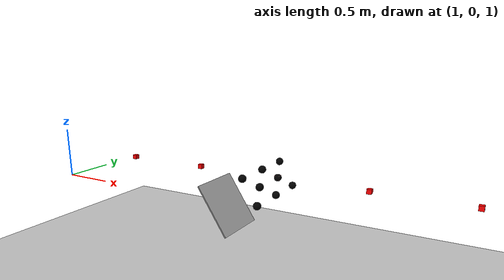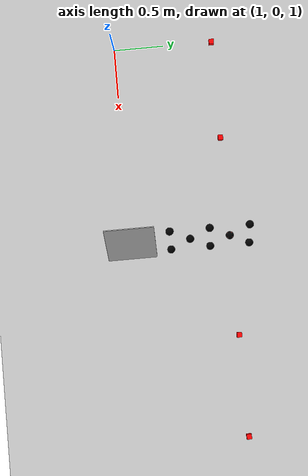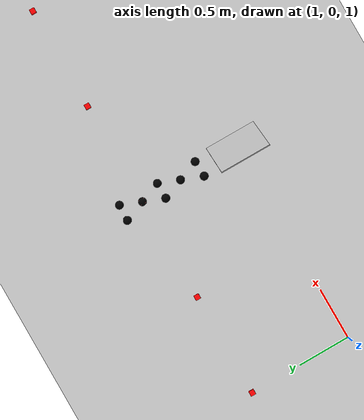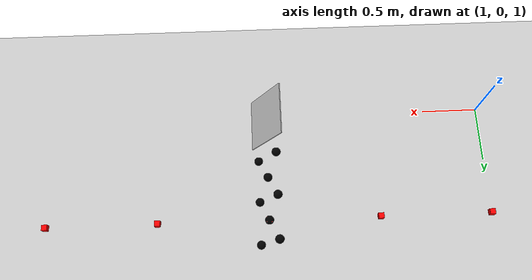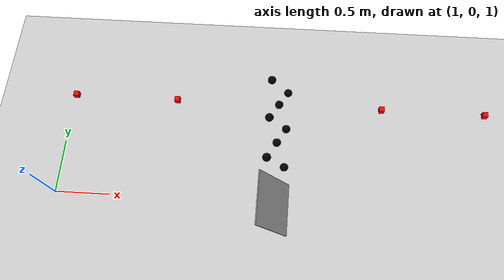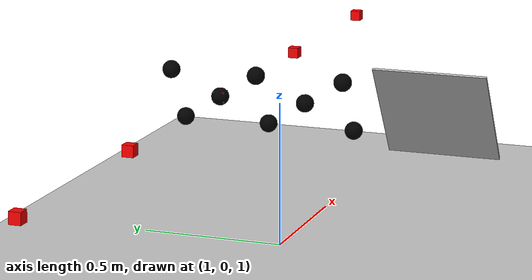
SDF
<?xml version="1.0" ?>
<sdf version="1.4">
  <world name="underwater_world">
    <physics name="default_physics" type="ode" default="true">
      <real_time_update_rate>100</real_time_update_rate>
      <max_step_size>0.001</max_step_size>
    </physics>
    <!-- 全局光源 -->
    <include>
      <uri>model://sun</uri>
    </include>

    <!-- 水下环境 -->
    <scene>
      <ambient>0.0 0.0 0.4 1</ambient>
      <background>0.0 0.0 0.4 1</background>
      <shadows>false</shadows>
    </scene>

    <!-- 棋盘模型 -->
    <include>
      <uri>model://chess_board</uri>
      <name>chess_board</name>
      <pose>3 0 1 0 1 0</pose>

    </include>

    <!-- 地面 -->
    <model name="ground_plane">
      <static>true</static>
      <link name="link">
        <collision name="collision">
          <geometry>
            <plane>
              <normal>0 0 1</normal>
              <size>100 100</size>
            </plane>
          </geometry>
        </collision>
        <visual name="visual">
          <geometry>
            <plane>
              <normal>0 0 1</normal>
              <size>100 100</size>
            </plane>
          </geometry>
          <material>
            <ambient>0.8 0.8 0.8 1</ambient>
            <diffuse>0.8 0.8 0.8 1</diffuse>
            <specular>0.8 0.8 0.8 1</specular>
          </material>
        </visual>
      </link>
    </model>

    <!-- 标记1 at (1,1,1) -->
    <model name="marker1">
      <static>true</static>
      <pose>1 1 1 0 0 0</pose>
      <link name="link">
        <visual name="visual">
          <geometry>
            <box>
              <size>0.05 0.05 0.05</size>
            </box>
          </geometry>
          <material>
            <ambient>1 0 0 1</ambient>
            <diffuse>1 0 0 1</diffuse>
          </material>
        </visual>
      </link>
    </model>

    <!-- 标记2 at (2,1,1) -->
    <model name="marker2">
      <static>true</static>
      <pose>2 1 1 0 0 0</pose>
      <link name="link">
        <visual name="visual">
          <geometry>
            <box>
              <size>0.05 0.05 0.05</size>
            </box>
          </geometry>
          <material>
            <ambient>1 0 0 1</ambient>
            <diffuse>1 0 0 1</diffuse>
          </material>
        </visual>
      </link>
    </model>

    <!-- 标记3 at (3,1,1) -->
    <model name="marker3">
      <static>true</static>
      <pose>3 1 1 0 0 0</pose>
      <link name="link">
        <visual name="visual">
          <geometry>
            <box>
              <size>0.05 0.05 0.05</size>
            </box>
          </geometry>
          <material>
            <ambient>1 0 0 1</ambient>
            <diffuse>1 0 0 1</diffuse>
          </material>
        </visual>
      </link>
    </model>

    <!-- 标记4 at (4,1,1) -->
    <model name="marker4">
      <static>true</static>
      <pose>4 1 1 0 0 0</pose>
      <link name="link">
        <visual name="visual">
          <geometry>
            <box>
              <size>0.05 0.05 0.05</size>
            </box>
          </geometry>
          <material>
            <ambient>1 0 0 1</ambient>
            <diffuse>1 0 0 1</diffuse>
          </material>
        </visual>
      </link>
    </model>

    <!-- 标记5 at (5,1,1) -->
    <model name="marker5">
      <static>true</static>
      <pose>5 1 1 0 0 0</pose>
      <link name="link">
        <visual name="visual">
          <geometry>
            <box>
              <size>0.05 0.05 0.05</size>
            </box>
          </geometry>
          <material>
            <ambient>1 0 0 1</ambient>
            <diffuse>1 0 0 1</diffuse>
          </material>
        </visual>
      </link>
    </model>

  </world>
</sdf>

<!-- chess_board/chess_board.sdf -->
<sdf version="1.6">
  <model name="chess_board">
    <pose>0 0 0 0 0 0</pose>
    <static>true</static>

    <link name="board">

      <visual name="visual">
        <cast_shadows>false</cast_shadows>
        <geometry>
          <box>
            <size>0.5 0.5 .01</size>
          </box>
        </geometry>
        <material>
          <script>
            <uri>model://chess_board/materials/scripts</uri>
            <uri>model://chess_board/materials/textures</uri>
            <name>Cube/chess_board</name>
          </script>
        </material>
      </visual>
    </link>

    <!-- 添加12个黑色小球 -->
    <!-- 每个球的直径设为方格的1/4 -->

    <link name="sphere1">
      <pose>0.15 0.4 0 0 0 0</pose>
      <visual name="visual">
        <geometry>
          <sphere>
            <radius>0.04</radius>
          </sphere>
        </geometry>
        <material>
          <ambient>0 0 0 1</ambient>
          <diffuse>0 0 0 1</diffuse>
          <specular>0 0 0 1</specular>
          <emissive>0 0 0 1</emissive>
        </material>
      </visual>
    </link>

    <link name="sphere1-2">
      <pose>-0.15 0.4 0 0 0 0</pose>
      <visual name="visual">
        <geometry>
          <sphere>
            <radius>0.04</radius>
          </sphere>
        </geometry>
        <material>
          <ambient>0 0 0 1</ambient>
          <diffuse>0 0 0 1</diffuse>
          <specular>0 0 0 1</specular>
          <emissive>0 0 0 1</emissive>
        </material>
      </visual>
    </link>

    <link name="sphere2">
      <pose>0 0.6 0 0 0 0</pose>
      <visual name="visual">
        <geometry>
          <sphere>
            <radius>0.04</radius>
          </sphere>
        </geometry>
        <material>
          <ambient>0 0 0 1</ambient>
          <diffuse>0 0 0 1</diffuse>
          <specular>0 0 0 1</specular>
          <emissive>0 0 0 1</emissive>
        </material>
      </visual>
    </link>

    <link name="sphere3-1">
      <pose>0.15 0.8 0 0 0 0</pose>
      <visual name="visual">
        <geometry>
          <sphere>
            <radius>0.04</radius>
          </sphere>
        </geometry>
        <material>
          <ambient>0 0 0 1</ambient>
          <diffuse>0 0 0 1</diffuse>
          <specular>0 0 0 1</specular>
          <emissive>0 0 0 1</emissive>
        </material>
      </visual>
    </link>

    <link name="sphere3-2">
      <pose>-0.15 0.8 0 0 0 0</pose>
      <visual name="visual">
        <geometry>
          <sphere>
            <radius>0.04</radius>
          </sphere>
        </geometry>
        <material>
          <ambient>0 0 0 1</ambient>
          <diffuse>0 0 0 1</diffuse>
          <specular>0 0 0 1</specular>
          <emissive>0 0 0 1</emissive>
        </material>
      </visual>
    </link>

    <link name="sphere4">
      <pose>0 1 0 0 0 0</pose>
      <visual name="visual">
        <geometry>
          <sphere>
            <radius>0.04</radius>
          </sphere>
        </geometry>
        <material>
          <ambient>0 0 0 1</ambient>
          <diffuse>0 0 0 1</diffuse>
          <specular>0 0 0 1</specular>
          <emissive>0 0 0 1</emissive>
        </material>
      </visual>
    </link>

     <link name="sphere5-1">
      <pose>0.15 1.2 0 0 0 0</pose>
      <visual name="visual">
        <geometry>
          <sphere>
            <radius>0.04</radius>
          </sphere>
        </geometry>
        <material>
          <ambient>0 0 0 1</ambient>
          <diffuse>0 0 0 1</diffuse>
          <specular>0 0 0 1</specular>
          <emissive>0 0 0 1</emissive>
        </material>
      </visual>
    </link>

    <link name="sphere6-2">
      <pose>-0.15 1.2 0 0 0 0</pose>
      <visual name="visual">
        <geometry>
          <sphere>
            <radius>0.04</radius>
          </sphere>
        </geometry>
        <material>
          <ambient>0 0 0 1</ambient>
          <diffuse>0 0 0 1</diffuse>
          <specular>0 0 0 1</specular>
          <emissive>0 0 0 1</emissive>
        </material>
      </visual>
    </link>

    <surface_props:material>rubber</surface_props:material>
    <surface_props:biofouling_rating>0.1</surface_props:biofouling_rating>
    <surface_props:roughness>0.1</surface_props:roughness>

  </model>
</sdf>
